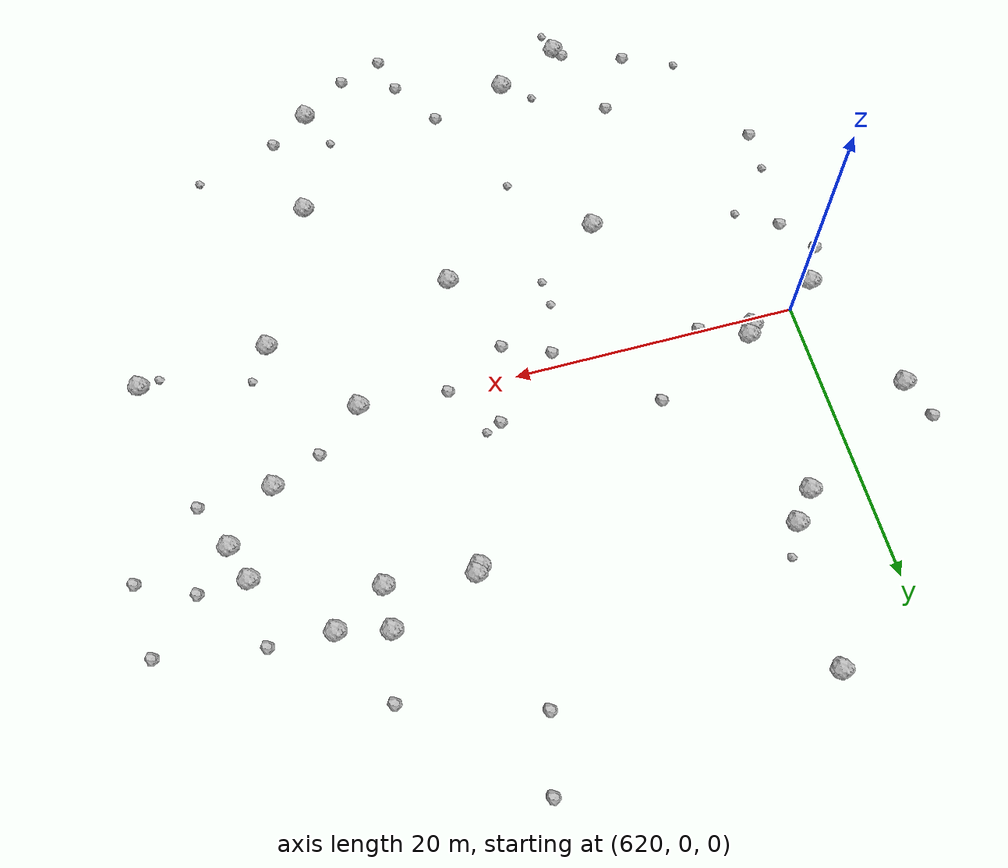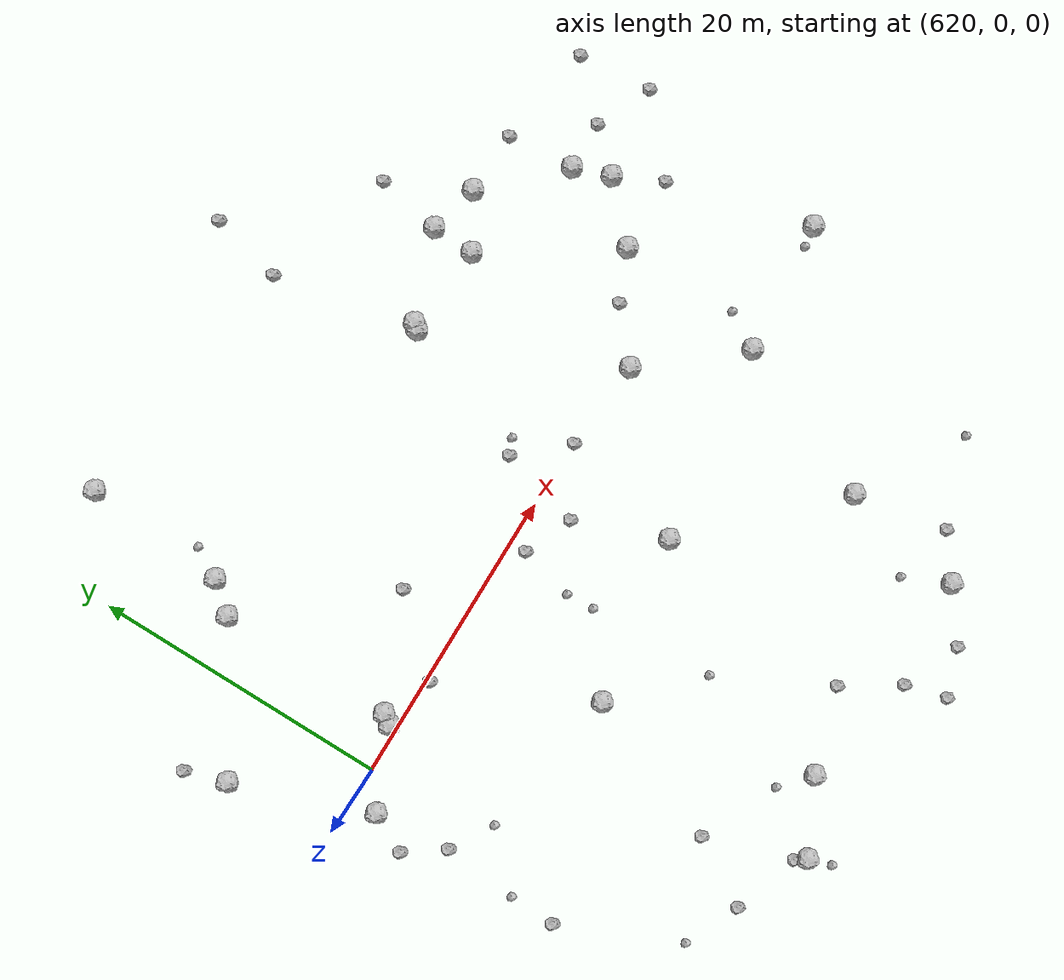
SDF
<sdf version="1.6">
 <world name="default">
  <include><uri>model://sun</uri></include>
  <model name="rock1_16_3">
   <include><uri>model://rock1</uri><pose>651.9294078367923 14.993009591207624 0.5 0 0 0</pose></include>
  </model>
  <model name="rock1_16_4">
   <include><uri>model://rock1</uri><pose>623.6068208594673 13.054791349990737 0.5 0 0 0</pose></include>
  </model>
  <model name="rock1_16_5">
   <include><uri>model://rock1</uri><pose>631.5284024272621 -10.277321910883309 0.5 0 0 0</pose></include>
  </model>
  <model name="rock1_16_6">
   <include><uri>model://rock1</uri><pose>645.9695900426893 12.821239089354385 0.5 0 0 0</pose></include>
  </model>
  <model name="rock1_16_7">
   <include><uri>model://rock1</uri><pose>649.7406500535068 -25.401434466515457 0.5 0 0 0</pose></include>
  </model>
  <model name="rock1_16_8">
   <include><uri>model://rock1</uri><pose>625.9606705420729 24.588813056313008 0.5 0 0 0</pose></include>
  </model>
  <model name="rock1_16_9">
   <include><uri>model://rock1</uri><pose>664.8987901637009 -5.884156811011692 0.5 0 0 0</pose></include>
  </model>
  <model name="rock1_16_10">
   <include><uri>model://rock1</uri><pose>623.6032367715832 1.2160128787459747 0.5 0 0 0</pose></include>
  </model>
  <model name="rock1_16_11">
   <include><uri>model://rock1</uri><pose>614.6633825972708 7.432081514575046 0.5 0 0 0</pose></include>
  </model>
  <model name="rock1_16_12">
   <include><uri>model://rock1</uri><pose>625.2223741805058 14.979773198497213 0.5 0 0 0</pose></include>
  </model>
  <model name="rock1_16_13">
   <include><uri>model://rock1</uri><pose>617.969942417075 -1.6997810704901326 0.5 0 0 0</pose></include>
  </model>
  <model name="rock1_16_14">
   <include><uri>model://rock1</uri><pose>651.3904068420752 -17.135178487036622 0.5 0 0 0</pose></include>
  </model>
  <model name="rock1_16_15">
   <include><uri>model://rock1</uri><pose>655.3384036894995 14.147172841378364 0.5 0 0 0</pose></include>
  </model>
  <model name="rock1_16_16">
   <include><uri>model://rock1</uri><pose>629.9112234268114 -26.60180815097249 0.5 0 0 0</pose></include>
  </model>
  <model name="rock1_16_17">
   <include><uri>model://rock1</uri><pose>642.6723389971498 -8.497365380906874 0.5 0 0 0</pose></include>
  </model>
  <model name="rock1_16_18">
   <include><uri>model://rock1</uri><pose>660.8468166394412 6.965342868812442 0.5 0 0 0</pose></include>
  </model>
  <model name="rock1_16_19">
   <include><uri>model://rock1</uri><pose>623.1392954615052 0.5365702923553819 0.5 0 0 0</pose></include>
  </model>
  <model name="rock1_16_20">
   <include><uri>model://rock1</uri><pose>634.6761770332929 -24.241592139871486 0.5 0 0 0</pose></include>
  </model>
  <model name="rock1_16_21">
   <include><uri>model://rock1</uri><pose>650.8029600525812 -0.5664757485508396 0.5 0 0 0</pose></include>
  </model>
  <model name="rock1_16_22">
   <include><uri>model://rock1</uri><pose>655.9761984971664 -6.682636925857921 0.5 0 0 0</pose></include>
  </model>
  <model name="rock1_16_23">
   <include><uri>model://rock1</uri><pose>645.6682274941636 12.429008808855748 0.5 0 0 0</pose></include>
  </model>
  <model name="rock1_16_24">
   <include><uri>model://rock1</uri><pose>657.3723553987895 3.6406388259711946 0.5 0 0 0</pose></include>
  </model>
  <model name="rock1_16_25">
   <include><uri>model://rock1</uri><pose>659.9801713341636 9.463686343785838 0.5 0 0 0</pose></include>
  </model>
  <model name="rock1_16_26">
   <include><uri>model://rock1</uri><pose>651.8206394771869 12.081292778088816 0.5 0 0 0</pose></include>
  </model>
  <model name="rock2_16_0">
   <include><uri>model://rock2</uri><pose>626.8004301885492 -0.1848544618881256 0.3 0 0 0</pose></include>
  </model>
  <model name="rock2_16_1">
   <include><uri>model://rock2</uri><pose>640.3654038657728 -2.442431484991122 0.3 0 0 0</pose></include>
  </model>
  <model name="rock2_16_2">
   <include><uri>model://rock2</uri><pose>613.7077132378147 10.222771600494326 0.3 0 0 0</pose></include>
  </model>
  <model name="rock2_16_3">
   <include><uri>model://rock2</uri><pose>666.5630307002493 12.86753378818382 0.3 0 0 0</pose></include>
  </model>
  <model name="rock2_16_4">
   <include><uri>model://rock2</uri><pose>663.2757793312866 9.544787523784976 0.3 0 0 0</pose></include>
  </model>
  <model name="rock2_16_5">
   <include><uri>model://rock2</uri><pose>629.3674484833695 -25.968499774190963 0.3 0 0 0</pose></include>
  </model>
  <model name="rock2_16_6">
   <include><uri>model://rock2</uri><pose>637.122014009879 -1.0543178865650944 0.3 0 0 0</pose></include>
  </model>
  <model name="rock2_16_7">
   <include><uri>model://rock2</uri><pose>641.8517129137306 3.089367194105897 0.3 0 0 0</pose></include>
  </model>
  <model name="rock2_16_8">
   <include><uri>model://rock2</uri><pose>630.932411402637 4.384766478835765 0.3 0 0 0</pose></include>
  </model>
  <model name="rock2_16_9">
   <include><uri>model://rock2</uri><pose>643.3137390353195 -28.995187798939124 0.3 0 0 0</pose></include>
  </model>
  <model name="rock2_16_10">
   <include><uri>model://rock2</uri><pose>652.5449086310167 -23.407718056619977 0.3 0 0 0</pose></include>
  </model>
  <model name="rock2_16_11">
   <include><uri>model://rock2</uri><pose>616.5753069336116 -4.285479020444452 0.3 0 0 0</pose></include>
  </model>
  <model name="rock2_16_12">
   <include><uri>model://rock2</uri><pose>642.588666352006 -26.220131371667396 0.3 0 0 0</pose></include>
  </model>
  <model name="rock2_16_13">
   <include><uri>model://rock2</uri><pose>667.0250827322368 7.848578701678669 0.3 0 0 0</pose></include>
  </model>
  <model name="rock2_16_14">
   <include><uri>model://rock2</uri><pose>662.37447766557 3.8006502372406032 0.3 0 0 0</pose></include>
  </model>
  <model name="rock2_16_15">
   <include><uri>model://rock2</uri><pose>654.0197962177523 2.2084598099648645 0.3 0 0 0</pose></include>
  </model>
  <model name="rock2_16_16">
   <include><uri>model://rock2</uri><pose>617.8180170318083 -14.925568875361785 0.3 0 0 0</pose></include>
  </model>
  <model name="rock2_16_17">
   <include><uri>model://rock2</uri><pose>646.4566536653508 -27.876420616290567 0.3 0 0 0</pose></include>
  </model>
  <model name="rock2_16_18">
   <include><uri>model://rock2</uri><pose>618.3634100250588 -6.825934073681218 0.3 0 0 0</pose></include>
  </model>
  <model name="rock2_16_19">
   <include><uri>model://rock2</uri><pose>624.9042840333595 -24.448222667241204 0.3 0 0 0</pose></include>
  </model>
  <model name="rock2_16_20">
   <include><uri>model://rock2</uri><pose>643.7992978059136 22.295947209973967 0.3 0 0 0</pose></include>
  </model>
  <model name="rock2_16_21">
   <include><uri>model://rock2</uri><pose>627.5328946458238 -20.15577457438755 0.3 0 0 0</pose></include>
  </model>
  <model name="rock2_16_22">
   <include><uri>model://rock2</uri><pose>659.5919125352714 14.020265286505513 0.3 0 0 0</pose></include>
  </model>
  <model name="rock2_16_23">
   <include><uri>model://rock2</uri><pose>652.7746029180701 19.455900883229397 0.3 0 0 0</pose></include>
  </model>
  <model name="rock2_16_24">
   <include><uri>model://rock2</uri><pose>640.2658612415509 -22.59648988709202 0.3 0 0 0</pose></include>
  </model>
  <model name="rock2_16_25">
   <include><uri>model://rock2</uri><pose>644.9710753652846 27.200567176716554 0.3 0 0 0</pose></include>
  </model>
  <model name="rock2_16_26">
   <include><uri>model://rock2</uri><pose>644.7164026212051 -0.06664658887273589 0.3 0 0 0</pose></include>
  </model>
  <model name="rock3_16_0">
   <include><uri>model://rock3</uri><pose>621.209772710748 -22.84502506738216 0.2 0 0 0</pose></include>
  </model>
  <model name="rock3_16_1">
   <include><uri>model://rock3</uri><pose>648.377388542084 -22.509042660710357 0.2 0 0 0</pose></include>
  </model>
  <model name="rock3_16_2">
   <include><uri>model://rock3</uri><pose>636.521079727791 -15.30356003830802 0.2 0 0 0</pose></include>
  </model>
  <model name="rock3_16_3">
   <include><uri>model://rock3</uri><pose>621.156198308836 -8.570624850659776 0.2 0 0 0</pose></include>
  </model>
  <model name="rock3_16_4">
   <include><uri>model://rock3</uri><pose>657.3848947353933 -4.340037370293416 0.2 0 0 0</pose></include>
  </model>
  <model name="rock3_16_5">
   <include><uri>model://rock3</uri><pose>632.6643020532914 -22.651414494705396 0.2 0 0 0</pose></include>
  </model>
  <model name="rock3_16_6">
   <include><uri>model://rock3</uri><pose>642.8988566055564 3.5207192308981803 0.2 0 0 0</pose></include>
  </model>
  <model name="rock3_16_7">
   <include><uri>model://rock3</uri><pose>663.4901820860242 -6.158234868558722 0.2 0 0 0</pose></include>
  </model>
  <model name="rock3_16_8">
   <include><uri>model://rock3</uri><pose>617.8738044960954 -11.8750430403825 0.2 0 0 0</pose></include>
  </model>
  <model name="rock3_16_9">
   <include><uri>model://rock3</uri><pose>630.3102002704821 -28.257425373331117 0.2 0 0 0</pose></include>
  </model>
  <model name="rock3_16_10">
   <include><uri>model://rock3</uri><pose>636.2475993293871 -6.712062041198752 0.2 0 0 0</pose></include>
  </model>
  <model name="rock3_16_11">
   <include><uri>model://rock3</uri><pose>658.3947427739635 -21.416808876337647 0.2 0 0 0</pose></include>
  </model>
  <model name="rock3_16_12">
   <include><uri>model://rock3</uri><pose>636.1475415894922 -4.803423904283459 0.2 0 0 0</pose></include>
  </model>
  <model name="rock3_16_13">
   <include><uri>model://rock3</uri><pose>626.2836046798775 17.04545921036199 0.2 0 0 0</pose></include>
  </model>
 </world>
</sdf>
